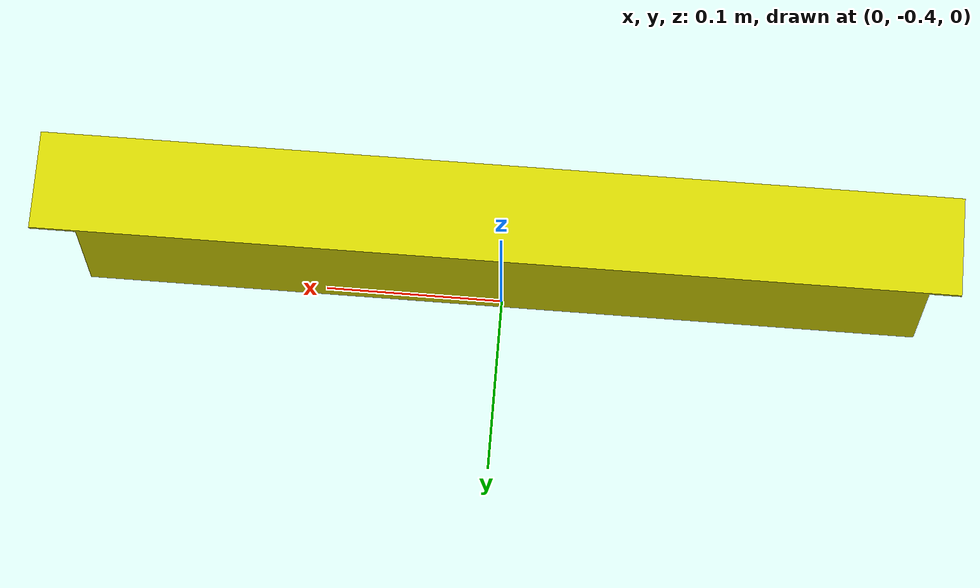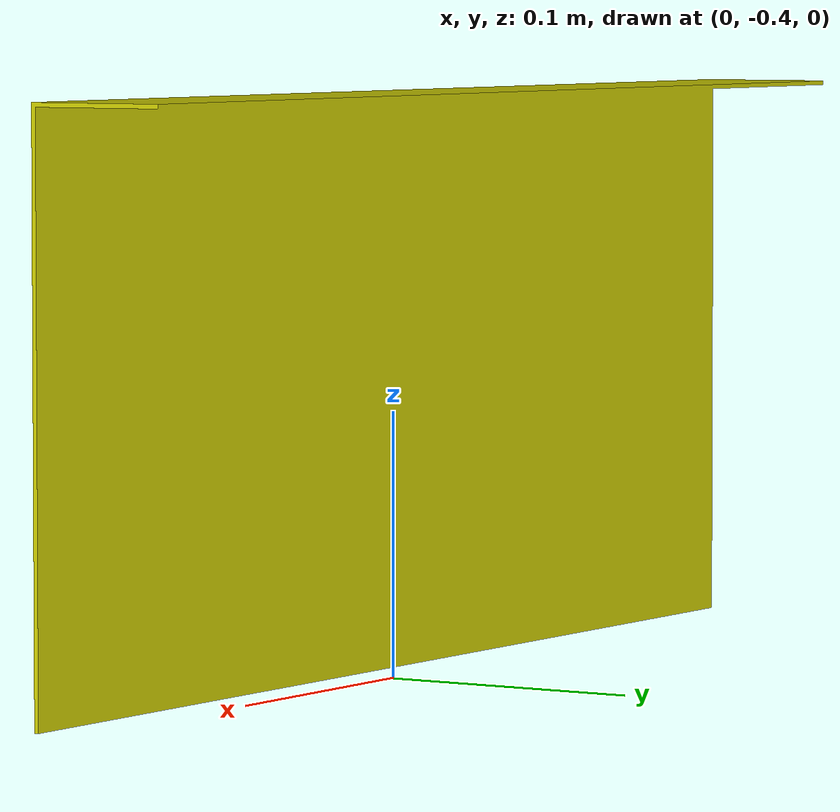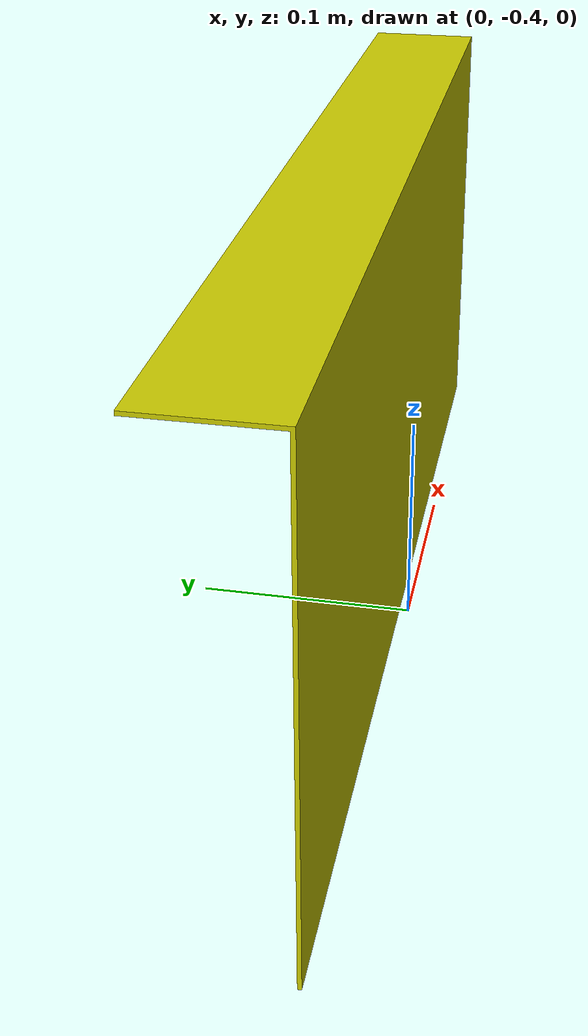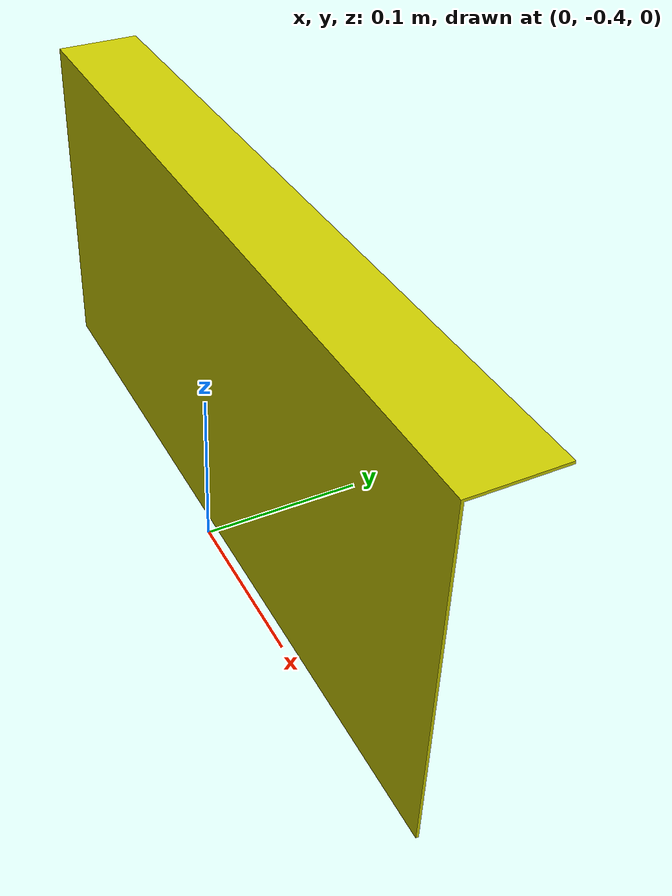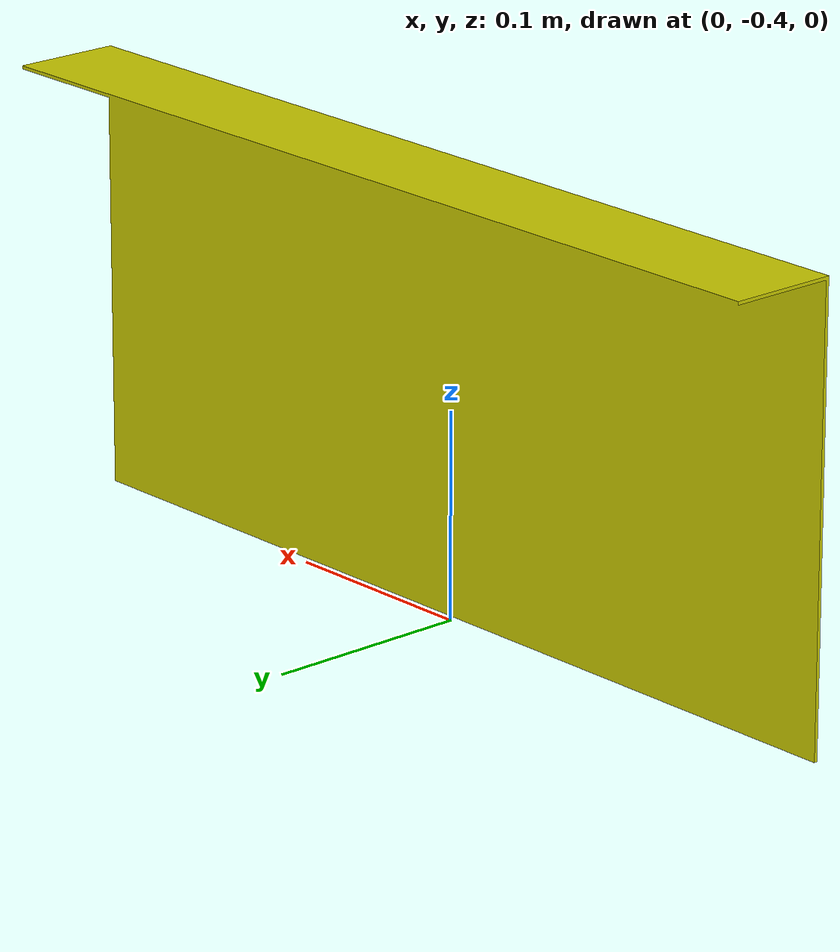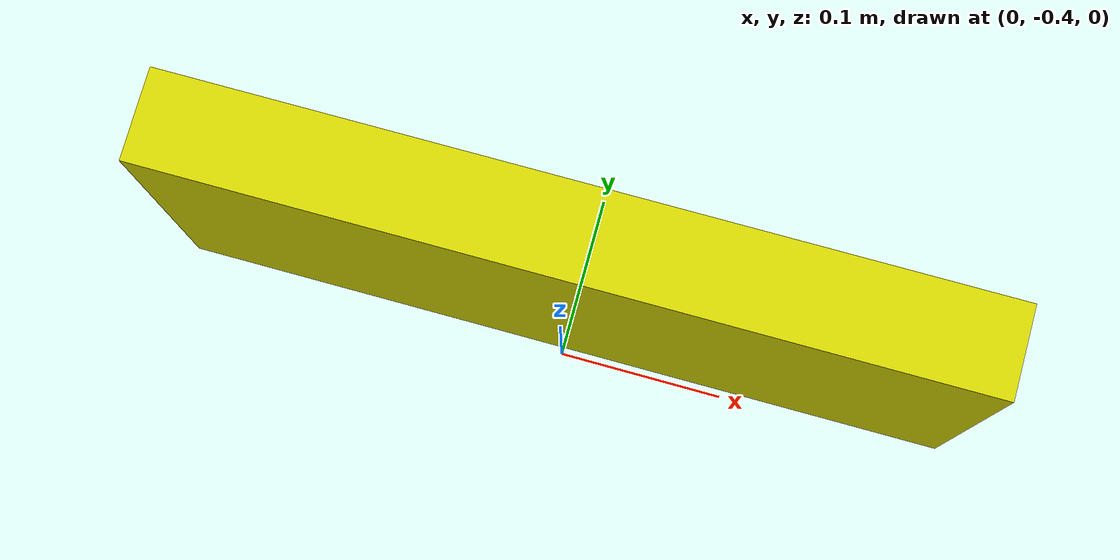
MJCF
<mujoco model="side-cover">
  <default>
    <default class="visual">
      <geom group="2" type="mesh" contype="0" conaffinity="0"/>
    </default>
    <default class="collision">
      <geom group="3" type="mesh"/>
    </default>
  </default>
  <asset>
    <material name="mtl_side-cover" specular="0.20000000000000004" shininess="1.0" rgba="0.80000000 0.80000000 0.00000000 1.0"/>
    <mesh file="side-cover.obj"/>
  </asset>
  <worldbody>
    <body name="side-cover">
      <geom material="mtl_side-cover" mesh="side-cover" class="visual"/>
      <geom mesh="side-cover" class="collision"/>
    </body>
  </worldbody>
</mujoco>
